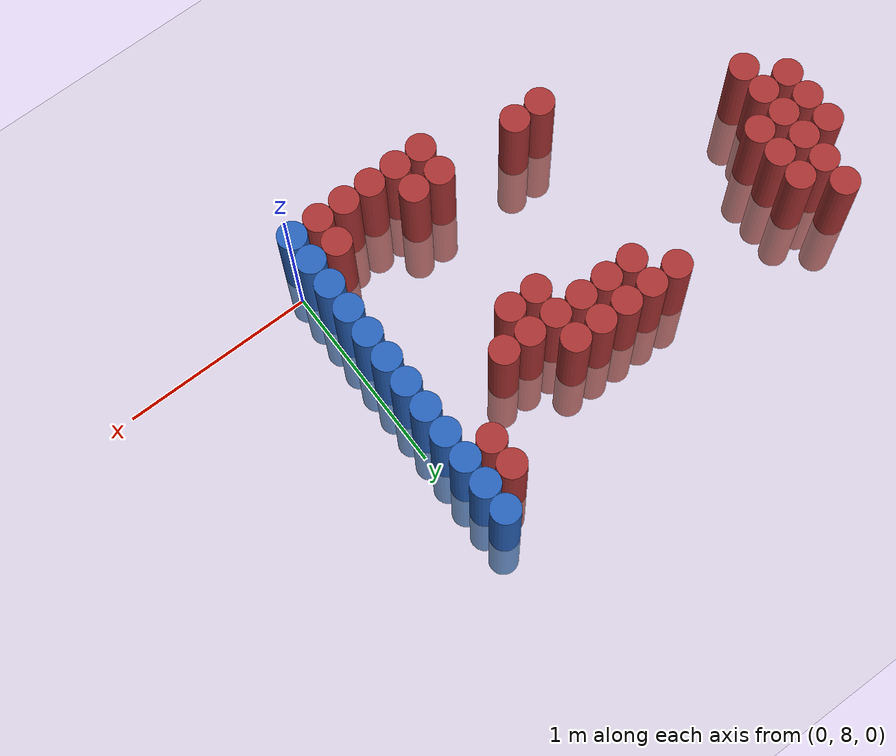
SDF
<sdf version="1.6">
 <world name="default">
  <model name="ground_plane">
   <static>1</static>
   <link name="link">
    <collision name="collision">
     <geometry><plane><normal>0 0 1</normal><size>100 100</size></plane></geometry>
     <surface><friction><ode><mu>100</mu><mu2>50</mu2></ode></friction></surface>
    </collision>
    <visual name="visual">
     <cast_shadows>0</cast_shadows>
     <geometry><plane><normal>0 0 1</normal><size>100 100</size></plane></geometry>
     <material>
      <script><uri>file://media/materials/scripts/gazebo.material</uri><name>Gazebo/Grey</name></script>
     </material>
    </visual>
   </link>
  </model>
  <model name="unit_cylinder_155">
   <static>1</static>
   <pose>-2.475000 8.625000 0.000000 0.000000 0.000000 0.000000</pose>
   <link name="link">
    <inertial>
     <mass>1</mass>
     <inertia><ixx>0.145833</ixx><ixy>0</ixy><ixz>0</ixz><iyy>0.145833</iyy><iyz>0</iyz><izz>0.125</izz></inertia>
    </inertial>
    <collision name="collision">
     <geometry><cylinder><radius>0.075000</radius><length>1</length></cylinder></geometry>
    </collision>
    <visual name="visual">
     <geometry><cylinder><radius>0.075000</radius><length>1</length></cylinder></geometry>
     <material>
      <ambient>0.648000 0.192000 0.192000 1</ambient>
      <diffuse>0.648000 0.192000 0.192000 1</diffuse>
     </material>
     <material>
      <script><name>Gazebo/Grey</name><uri>file://media/materials/scripts/gazebo.material</uri></script>
     </material>
    </visual>
   </link>
  </model>
  <model name="unit_cylinder_156">
   <static>1</static>
   <pose>-2.475000 8.775000 0.000000 0.000000 0.000000 0.000000</pose>
   <link name="link">
    <inertial>
     <mass>1</mass>
     <inertia><ixx>0.145833</ixx><ixy>0</ixy><ixz>0</ixz><iyy>0.145833</iyy><iyz>0</iyz><izz>0.125</izz></inertia>
    </inertial>
    <collision name="collision">
     <geometry><cylinder><radius>0.075000</radius><length>1</length></cylinder></geometry>
    </collision>
    <visual name="visual">
     <geometry><cylinder><radius>0.075000</radius><length>1</length></cylinder></geometry>
     <material>
      <ambient>0.648000 0.192000 0.192000 1</ambient>
      <diffuse>0.648000 0.192000 0.192000 1</diffuse>
     </material>
     <material>
      <script><name>Gazebo/Grey</name><uri>file://media/materials/scripts/gazebo.material</uri></script>
     </material>
    </visual>
   </link>
  </model>
  <model name="unit_cylinder_157">
   <static>1</static>
   <pose>-2.475000 8.925000 0.000000 0.000000 0.000000 0.000000</pose>
   <link name="link">
    <inertial>
     <mass>1</mass>
     <inertia><ixx>0.145833</ixx><ixy>0</ixy><ixz>0</ixz><iyy>0.145833</iyy><iyz>0</iyz><izz>0.125</izz></inertia>
    </inertial>
    <collision name="collision">
     <geometry><cylinder><radius>0.075000</radius><length>1</length></cylinder></geometry>
    </collision>
    <visual name="visual">
     <geometry><cylinder><radius>0.075000</radius><length>1</length></cylinder></geometry>
     <material>
      <ambient>0.648000 0.192000 0.192000 1</ambient>
      <diffuse>0.648000 0.192000 0.192000 1</diffuse>
     </material>
     <material>
      <script><name>Gazebo/Grey</name><uri>file://media/materials/scripts/gazebo.material</uri></script>
     </material>
    </visual>
   </link>
  </model>
  <model name="unit_cylinder_160">
   <static>1</static>
   <pose>-2.325000 8.475000 0.000000 0.000000 0.000000 0.000000</pose>
   <link name="link">
    <inertial>
     <mass>1</mass>
     <inertia><ixx>0.145833</ixx><ixy>0</ixy><ixz>0</ixz><iyy>0.145833</iyy><iyz>0</iyz><izz>0.125</izz></inertia>
    </inertial>
    <collision name="collision">
     <geometry><cylinder><radius>0.075000</radius><length>1</length></cylinder></geometry>
    </collision>
    <visual name="visual">
     <geometry><cylinder><radius>0.075000</radius><length>1</length></cylinder></geometry>
     <material>
      <ambient>0.648000 0.192000 0.192000 1</ambient>
      <diffuse>0.648000 0.192000 0.192000 1</diffuse>
     </material>
     <material>
      <script><name>Gazebo/Grey</name><uri>file://media/materials/scripts/gazebo.material</uri></script>
     </material>
    </visual>
   </link>
  </model>
  <model name="unit_cylinder_161">
   <static>1</static>
   <pose>-2.325000 8.625000 0.000000 0.000000 0.000000 0.000000</pose>
   <link name="link">
    <inertial>
     <mass>1</mass>
     <inertia><ixx>0.145833</ixx><ixy>0</ixy><ixz>0</ixz><iyy>0.145833</iyy><iyz>0</iyz><izz>0.125</izz></inertia>
    </inertial>
    <collision name="collision">
     <geometry><cylinder><radius>0.075000</radius><length>1</length></cylinder></geometry>
    </collision>
    <visual name="visual">
     <geometry><cylinder><radius>0.075000</radius><length>1</length></cylinder></geometry>
     <material>
      <ambient>0.648000 0.192000 0.192000 1</ambient>
      <diffuse>0.648000 0.192000 0.192000 1</diffuse>
     </material>
     <material>
      <script><name>Gazebo/Grey</name><uri>file://media/materials/scripts/gazebo.material</uri></script>
     </material>
    </visual>
   </link>
  </model>
  <model name="unit_cylinder_162">
   <static>1</static>
   <pose>-2.325000 8.775000 0.000000 0.000000 0.000000 0.000000</pose>
   <link name="link">
    <inertial>
     <mass>1</mass>
     <inertia><ixx>0.145833</ixx><ixy>0</ixy><ixz>0</ixz><iyy>0.145833</iyy><iyz>0</iyz><izz>0.125</izz></inertia>
    </inertial>
    <collision name="collision">
     <geometry><cylinder><radius>0.075000</radius><length>1</length></cylinder></geometry>
    </collision>
    <visual name="visual">
     <geometry><cylinder><radius>0.075000</radius><length>1</length></cylinder></geometry>
     <material>
      <ambient>0.648000 0.192000 0.192000 1</ambient>
      <diffuse>0.648000 0.192000 0.192000 1</diffuse>
     </material>
     <material>
      <script><name>Gazebo/Grey</name><uri>file://media/materials/scripts/gazebo.material</uri></script>
     </material>
    </visual>
   </link>
  </model>
  <model name="unit_cylinder_163">
   <static>1</static>
   <pose>-2.325000 8.925000 0.000000 0.000000 0.000000 0.000000</pose>
   <link name="link">
    <inertial>
     <mass>1</mass>
     <inertia><ixx>0.145833</ixx><ixy>0</ixy><ixz>0</ixz><iyy>0.145833</iyy><iyz>0</iyz><izz>0.125</izz></inertia>
    </inertial>
    <collision name="collision">
     <geometry><cylinder><radius>0.075000</radius><length>1</length></cylinder></geometry>
    </collision>
    <visual name="visual">
     <geometry><cylinder><radius>0.075000</radius><length>1</length></cylinder></geometry>
     <material>
      <ambient>0.648000 0.192000 0.192000 1</ambient>
      <diffuse>0.648000 0.192000 0.192000 1</diffuse>
     </material>
     <material>
      <script><name>Gazebo/Grey</name><uri>file://media/materials/scripts/gazebo.material</uri></script>
     </material>
    </visual>
   </link>
  </model>
  <model name="unit_cylinder_164">
   <static>1</static>
   <pose>-2.325000 9.075000 0.000000 0.000000 0.000000 0.000000</pose>
   <link name="link">
    <inertial>
     <mass>1</mass>
     <inertia><ixx>0.145833</ixx><ixy>0</ixy><ixz>0</ixz><iyy>0.145833</iyy><iyz>0</iyz><izz>0.125</izz></inertia>
    </inertial>
    <collision name="collision">
     <geometry><cylinder><radius>0.075000</radius><length>1</length></cylinder></geometry>
    </collision>
    <visual name="visual">
     <geometry><cylinder><radius>0.075000</radius><length>1</length></cylinder></geometry>
     <material>
      <ambient>0.648000 0.192000 0.192000 1</ambient>
      <diffuse>0.648000 0.192000 0.192000 1</diffuse>
     </material>
     <material>
      <script><name>Gazebo/Grey</name><uri>file://media/materials/scripts/gazebo.material</uri></script>
     </material>
    </visual>
   </link>
  </model>
  <model name="unit_cylinder_165">
   <static>1</static>
   <pose>-2.325000 9.225000 0.000000 0.000000 0.000000 0.000000</pose>
   <link name="link">
    <inertial>
     <mass>1</mass>
     <inertia><ixx>0.145833</ixx><ixy>0</ixy><ixz>0</ixz><iyy>0.145833</iyy><iyz>0</iyz><izz>0.125</izz></inertia>
    </inertial>
    <collision name="collision">
     <geometry><cylinder><radius>0.075000</radius><length>1</length></cylinder></geometry>
    </collision>
    <visual name="visual">
     <geometry><cylinder><radius>0.075000</radius><length>1</length></cylinder></geometry>
     <material>
      <ambient>0.648000 0.192000 0.192000 1</ambient>
      <diffuse>0.648000 0.192000 0.192000 1</diffuse>
     </material>
     <material>
      <script><name>Gazebo/Grey</name><uri>file://media/materials/scripts/gazebo.material</uri></script>
     </material>
    </visual>
   </link>
  </model>
  <model name="unit_cylinder_168">
   <static>1</static>
   <pose>-2.175000 8.775000 0.000000 0.000000 0.000000 0.000000</pose>
   <link name="link">
    <inertial>
     <mass>1</mass>
     <inertia><ixx>0.145833</ixx><ixy>0</ixy><ixz>0</ixz><iyy>0.145833</iyy><iyz>0</iyz><izz>0.125</izz></inertia>
    </inertial>
    <collision name="collision">
     <geometry><cylinder><radius>0.075000</radius><length>1</length></cylinder></geometry>
    </collision>
    <visual name="visual">
     <geometry><cylinder><radius>0.075000</radius><length>1</length></cylinder></geometry>
     <material>
      <ambient>0.648000 0.192000 0.192000 1</ambient>
      <diffuse>0.648000 0.192000 0.192000 1</diffuse>
     </material>
     <material>
      <script><name>Gazebo/Grey</name><uri>file://media/materials/scripts/gazebo.material</uri></script>
     </material>
    </visual>
   </link>
  </model>
  <model name="unit_cylinder_169">
   <static>1</static>
   <pose>-2.175000 8.925000 0.000000 0.000000 0.000000 0.000000</pose>
   <link name="link">
    <inertial>
     <mass>1</mass>
     <inertia><ixx>0.145833</ixx><ixy>0</ixy><ixz>0</ixz><iyy>0.145833</iyy><iyz>0</iyz><izz>0.125</izz></inertia>
    </inertial>
    <collision name="collision">
     <geometry><cylinder><radius>0.075000</radius><length>1</length></cylinder></geometry>
    </collision>
    <visual name="visual">
     <geometry><cylinder><radius>0.075000</radius><length>1</length></cylinder></geometry>
     <material>
      <ambient>0.648000 0.192000 0.192000 1</ambient>
      <diffuse>0.648000 0.192000 0.192000 1</diffuse>
     </material>
     <material>
      <script><name>Gazebo/Grey</name><uri>file://media/materials/scripts/gazebo.material</uri></script>
     </material>
    </visual>
   </link>
  </model>
  <model name="unit_cylinder_170">
   <static>1</static>
   <pose>-2.175000 9.075000 0.000000 0.000000 0.000000 0.000000</pose>
   <link name="link">
    <inertial>
     <mass>1</mass>
     <inertia><ixx>0.145833</ixx><ixy>0</ixy><ixz>0</ixz><iyy>0.145833</iyy><iyz>0</iyz><izz>0.125</izz></inertia>
    </inertial>
    <collision name="collision">
     <geometry><cylinder><radius>0.075000</radius><length>1</length></cylinder></geometry>
    </collision>
    <visual name="visual">
     <geometry><cylinder><radius>0.075000</radius><length>1</length></cylinder></geometry>
     <material>
      <ambient>0.648000 0.192000 0.192000 1</ambient>
      <diffuse>0.648000 0.192000 0.192000 1</diffuse>
     </material>
     <material>
      <script><name>Gazebo/Grey</name><uri>file://media/materials/scripts/gazebo.material</uri></script>
     </material>
    </visual>
   </link>
  </model>
  <model name="unit_cylinder_195">
   <static>1</static>
   <pose>-1.425000 8.025000 0.000000 0.000000 0.000000 0.000000</pose>
   <link name="link">
    <inertial>
     <mass>1</mass>
     <inertia><ixx>0.145833</ixx><ixy>0</ixy><ixz>0</ixz><iyy>0.145833</iyy><iyz>0</iyz><izz>0.125</izz></inertia>
    </inertial>
    <collision name="collision">
     <geometry><cylinder><radius>0.075000</radius><length>1</length></cylinder></geometry>
    </collision>
    <visual name="visual">
     <geometry><cylinder><radius>0.075000</radius><length>1</length></cylinder></geometry>
     <material>
      <ambient>0.648000 0.192000 0.192000 1</ambient>
      <diffuse>0.648000 0.192000 0.192000 1</diffuse>
     </material>
     <material>
      <script><name>Gazebo/Grey</name><uri>file://media/materials/scripts/gazebo.material</uri></script>
     </material>
    </visual>
   </link>
  </model>
  <model name="unit_cylinder_196">
   <static>1</static>
   <pose>-1.425000 9.075000 0.000000 0.000000 0.000000 0.000000</pose>
   <link name="link">
    <inertial>
     <mass>1</mass>
     <inertia><ixx>0.145833</ixx><ixy>0</ixy><ixz>0</ixz><iyy>0.145833</iyy><iyz>0</iyz><izz>0.125</izz></inertia>
    </inertial>
    <collision name="collision">
     <geometry><cylinder><radius>0.075000</radius><length>1</length></cylinder></geometry>
    </collision>
    <visual name="visual">
     <geometry><cylinder><radius>0.075000</radius><length>1</length></cylinder></geometry>
     <material>
      <ambient>0.648000 0.192000 0.192000 1</ambient>
      <diffuse>0.648000 0.192000 0.192000 1</diffuse>
     </material>
     <material>
      <script><name>Gazebo/Grey</name><uri>file://media/materials/scripts/gazebo.material</uri></script>
     </material>
    </visual>
   </link>
  </model>
  <model name="unit_cylinder_200">
   <static>1</static>
   <pose>-1.275000 8.025000 0.000000 0.000000 0.000000 0.000000</pose>
   <link name="link">
    <inertial>
     <mass>1</mass>
     <inertia><ixx>0.145833</ixx><ixy>0</ixy><ixz>0</ixz><iyy>0.145833</iyy><iyz>0</iyz><izz>0.125</izz></inertia>
    </inertial>
    <collision name="collision">
     <geometry><cylinder><radius>0.075000</radius><length>1</length></cylinder></geometry>
    </collision>
    <visual name="visual">
     <geometry><cylinder><radius>0.075000</radius><length>1</length></cylinder></geometry>
     <material>
      <ambient>0.648000 0.192000 0.192000 1</ambient>
      <diffuse>0.648000 0.192000 0.192000 1</diffuse>
     </material>
     <material>
      <script><name>Gazebo/Grey</name><uri>file://media/materials/scripts/gazebo.material</uri></script>
     </material>
    </visual>
   </link>
  </model>
  <model name="unit_cylinder_201">
   <static>1</static>
   <pose>-1.275000 8.925000 0.000000 0.000000 0.000000 0.000000</pose>
   <link name="link">
    <inertial>
     <mass>1</mass>
     <inertia><ixx>0.145833</ixx><ixy>0</ixy><ixz>0</ixz><iyy>0.145833</iyy><iyz>0</iyz><izz>0.125</izz></inertia>
    </inertial>
    <collision name="collision">
     <geometry><cylinder><radius>0.075000</radius><length>1</length></cylinder></geometry>
    </collision>
    <visual name="visual">
     <geometry><cylinder><radius>0.075000</radius><length>1</length></cylinder></geometry>
     <material>
      <ambient>0.648000 0.192000 0.192000 1</ambient>
      <diffuse>0.648000 0.192000 0.192000 1</diffuse>
     </material>
     <material>
      <script><name>Gazebo/Grey</name><uri>file://media/materials/scripts/gazebo.material</uri></script>
     </material>
    </visual>
   </link>
  </model>
  <model name="unit_cylinder_202">
   <static>1</static>
   <pose>-1.275000 9.075000 0.000000 0.000000 0.000000 0.000000</pose>
   <link name="link">
    <inertial>
     <mass>1</mass>
     <inertia><ixx>0.145833</ixx><ixy>0</ixy><ixz>0</ixz><iyy>0.145833</iyy><iyz>0</iyz><izz>0.125</izz></inertia>
    </inertial>
    <collision name="collision">
     <geometry><cylinder><radius>0.075000</radius><length>1</length></cylinder></geometry>
    </collision>
    <visual name="visual">
     <geometry><cylinder><radius>0.075000</radius><length>1</length></cylinder></geometry>
     <material>
      <ambient>0.648000 0.192000 0.192000 1</ambient>
      <diffuse>0.648000 0.192000 0.192000 1</diffuse>
     </material>
     <material>
      <script><name>Gazebo/Grey</name><uri>file://media/materials/scripts/gazebo.material</uri></script>
     </material>
    </visual>
   </link>
  </model>
  <model name="unit_cylinder_209">
   <static>1</static>
   <pose>-1.125000 8.925000 0.000000 0.000000 0.000000 0.000000</pose>
   <link name="link">
    <inertial>
     <mass>1</mass>
     <inertia><ixx>0.145833</ixx><ixy>0</ixy><ixz>0</ixz><iyy>0.145833</iyy><iyz>0</iyz><izz>0.125</izz></inertia>
    </inertial>
    <collision name="collision">
     <geometry><cylinder><radius>0.075000</radius><length>1</length></cylinder></geometry>
    </collision>
    <visual name="visual">
     <geometry><cylinder><radius>0.075000</radius><length>1</length></cylinder></geometry>
     <material>
      <ambient>0.648000 0.192000 0.192000 1</ambient>
      <diffuse>0.648000 0.192000 0.192000 1</diffuse>
     </material>
     <material>
      <script><name>Gazebo/Grey</name><uri>file://media/materials/scripts/gazebo.material</uri></script>
     </material>
    </visual>
   </link>
  </model>
  <model name="unit_cylinder_210">
   <static>1</static>
   <pose>-1.125000 9.075000 0.000000 0.000000 0.000000 0.000000</pose>
   <link name="link">
    <inertial>
     <mass>1</mass>
     <inertia><ixx>0.145833</ixx><ixy>0</ixy><ixz>0</ixz><iyy>0.145833</iyy><iyz>0</iyz><izz>0.125</izz></inertia>
    </inertial>
    <collision name="collision">
     <geometry><cylinder><radius>0.075000</radius><length>1</length></cylinder></geometry>
    </collision>
    <visual name="visual">
     <geometry><cylinder><radius>0.075000</radius><length>1</length></cylinder></geometry>
     <material>
      <ambient>0.648000 0.192000 0.192000 1</ambient>
      <diffuse>0.648000 0.192000 0.192000 1</diffuse>
     </material>
     <material>
      <script><name>Gazebo/Grey</name><uri>file://media/materials/scripts/gazebo.material</uri></script>
     </material>
    </visual>
   </link>
  </model>
  <model name="unit_cylinder_215">
   <static>1</static>
   <pose>-0.975000 8.925000 0.000000 0.000000 0.000000 0.000000</pose>
   <link name="link">
    <inertial>
     <mass>1</mass>
     <inertia><ixx>0.145833</ixx><ixy>0</ixy><ixz>0</ixz><iyy>0.145833</iyy><iyz>0</iyz><izz>0.125</izz></inertia>
    </inertial>
    <collision name="collision">
     <geometry><cylinder><radius>0.075000</radius><length>1</length></cylinder></geometry>
    </collision>
    <visual name="visual">
     <geometry><cylinder><radius>0.075000</radius><length>1</length></cylinder></geometry>
     <material>
      <ambient>0.648000 0.192000 0.192000 1</ambient>
      <diffuse>0.648000 0.192000 0.192000 1</diffuse>
     </material>
     <material>
      <script><name>Gazebo/Grey</name><uri>file://media/materials/scripts/gazebo.material</uri></script>
     </material>
    </visual>
   </link>
  </model>
  <model name="unit_cylinder_216">
   <static>1</static>
   <pose>-0.975000 9.075000 0.000000 0.000000 0.000000 0.000000</pose>
   <link name="link">
    <inertial>
     <mass>1</mass>
     <inertia><ixx>0.145833</ixx><ixy>0</ixy><ixz>0</ixz><iyy>0.145833</iyy><iyz>0</iyz><izz>0.125</izz></inertia>
    </inertial>
    <collision name="collision">
     <geometry><cylinder><radius>0.075000</radius><length>1</length></cylinder></geometry>
    </collision>
    <visual name="visual">
     <geometry><cylinder><radius>0.075000</radius><length>1</length></cylinder></geometry>
     <material>
      <ambient>0.648000 0.192000 0.192000 1</ambient>
      <diffuse>0.648000 0.192000 0.192000 1</diffuse>
     </material>
     <material>
      <script><name>Gazebo/Grey</name><uri>file://media/materials/scripts/gazebo.material</uri></script>
     </material>
    </visual>
   </link>
  </model>
  <model name="unit_cylinder_218">
   <static>1</static>
   <pose>-0.825000 7.875000 0.000000 0.000000 0.000000 0.000000</pose>
   <link name="link">
    <inertial>
     <mass>1</mass>
     <inertia><ixx>0.145833</ixx><ixy>0</ixy><ixz>0</ixz><iyy>0.145833</iyy><iyz>0</iyz><izz>0.125</izz></inertia>
    </inertial>
    <collision name="collision">
     <geometry><cylinder><radius>0.075000</radius><length>1</length></cylinder></geometry>
    </collision>
    <visual name="visual">
     <geometry><cylinder><radius>0.075000</radius><length>1</length></cylinder></geometry>
     <material>
      <ambient>0.648000 0.192000 0.192000 1</ambient>
      <diffuse>0.648000 0.192000 0.192000 1</diffuse>
     </material>
     <material>
      <script><name>Gazebo/Grey</name><uri>file://media/materials/scripts/gazebo.material</uri></script>
     </material>
    </visual>
   </link>
  </model>
  <model name="unit_cylinder_219">
   <static>1</static>
   <pose>-0.825000 8.025000 0.000000 0.000000 0.000000 0.000000</pose>
   <link name="link">
    <inertial>
     <mass>1</mass>
     <inertia><ixx>0.145833</ixx><ixy>0</ixy><ixz>0</ixz><iyy>0.145833</iyy><iyz>0</iyz><izz>0.125</izz></inertia>
    </inertial>
    <collision name="collision">
     <geometry><cylinder><radius>0.075000</radius><length>1</length></cylinder></geometry>
    </collision>
    <visual name="visual">
     <geometry><cylinder><radius>0.075000</radius><length>1</length></cylinder></geometry>
     <material>
      <ambient>0.648000 0.192000 0.192000 1</ambient>
      <diffuse>0.648000 0.192000 0.192000 1</diffuse>
     </material>
     <material>
      <script><name>Gazebo/Grey</name><uri>file://media/materials/scripts/gazebo.material</uri></script>
     </material>
    </visual>
   </link>
  </model>
  <model name="unit_cylinder_220">
   <static>1</static>
   <pose>-0.825000 8.775000 0.000000 0.000000 0.000000 0.000000</pose>
   <link name="link">
    <inertial>
     <mass>1</mass>
     <inertia><ixx>0.145833</ixx><ixy>0</ixy><ixz>0</ixz><iyy>0.145833</iyy><iyz>0</iyz><izz>0.125</izz></inertia>
    </inertial>
    <collision name="collision">
     <geometry><cylinder><radius>0.075000</radius><length>1</length></cylinder></geometry>
    </collision>
    <visual name="visual">
     <geometry><cylinder><radius>0.075000</radius><length>1</length></cylinder></geometry>
     <material>
      <ambient>0.648000 0.192000 0.192000 1</ambient>
      <diffuse>0.648000 0.192000 0.192000 1</diffuse>
     </material>
     <material>
      <script><name>Gazebo/Grey</name><uri>file://media/materials/scripts/gazebo.material</uri></script>
     </material>
    </visual>
   </link>
  </model>
  <model name="unit_cylinder_221">
   <static>1</static>
   <pose>-0.825000 8.925000 0.000000 0.000000 0.000000 0.000000</pose>
   <link name="link">
    <inertial>
     <mass>1</mass>
     <inertia><ixx>0.145833</ixx><ixy>0</ixy><ixz>0</ixz><iyy>0.145833</iyy><iyz>0</iyz><izz>0.125</izz></inertia>
    </inertial>
    <collision name="collision">
     <geometry><cylinder><radius>0.075000</radius><length>1</length></cylinder></geometry>
    </collision>
    <visual name="visual">
     <geometry><cylinder><radius>0.075000</radius><length>1</length></cylinder></geometry>
     <material>
      <ambient>0.648000 0.192000 0.192000 1</ambient>
      <diffuse>0.648000 0.192000 0.192000 1</diffuse>
     </material>
     <material>
      <script><name>Gazebo/Grey</name><uri>file://media/materials/scripts/gazebo.material</uri></script>
     </material>
    </visual>
   </link>
  </model>
  <model name="unit_cylinder_222">
   <static>1</static>
   <pose>-0.825000 9.075000 0.000000 0.000000 0.000000 0.000000</pose>
   <link name="link">
    <inertial>
     <mass>1</mass>
     <inertia><ixx>0.145833</ixx><ixy>0</ixy><ixz>0</ixz><iyy>0.145833</iyy><iyz>0</iyz><izz>0.125</izz></inertia>
    </inertial>
    <collision name="collision">
     <geometry><cylinder><radius>0.075000</radius><length>1</length></cylinder></geometry>
    </collision>
    <visual name="visual">
     <geometry><cylinder><radius>0.075000</radius><length>1</length></cylinder></geometry>
     <material>
      <ambient>0.648000 0.192000 0.192000 1</ambient>
      <diffuse>0.648000 0.192000 0.192000 1</diffuse>
     </material>
     <material>
      <script><name>Gazebo/Grey</name><uri>file://media/materials/scripts/gazebo.material</uri></script>
     </material>
    </visual>
   </link>
  </model>
  <model name="unit_cylinder_226">
   <static>1</static>
   <pose>-0.675000 7.875000 0.000000 0.000000 0.000000 0.000000</pose>
   <link name="link">
    <inertial>
     <mass>1</mass>
     <inertia><ixx>0.145833</ixx><ixy>0</ixy><ixz>0</ixz><iyy>0.145833</iyy><iyz>0</iyz><izz>0.125</izz></inertia>
    </inertial>
    <collision name="collision">
     <geometry><cylinder><radius>0.075000</radius><length>1</length></cylinder></geometry>
    </collision>
    <visual name="visual">
     <geometry><cylinder><radius>0.075000</radius><length>1</length></cylinder></geometry>
     <material>
      <ambient>0.648000 0.192000 0.192000 1</ambient>
      <diffuse>0.648000 0.192000 0.192000 1</diffuse>
     </material>
     <material>
      <script><name>Gazebo/Grey</name><uri>file://media/materials/scripts/gazebo.material</uri></script>
     </material>
    </visual>
   </link>
  </model>
  <model name="unit_cylinder_227">
   <static>1</static>
   <pose>-0.675000 8.025000 0.000000 0.000000 0.000000 0.000000</pose>
   <link name="link">
    <inertial>
     <mass>1</mass>
     <inertia><ixx>0.145833</ixx><ixy>0</ixy><ixz>0</ixz><iyy>0.145833</iyy><iyz>0</iyz><izz>0.125</izz></inertia>
    </inertial>
    <collision name="collision">
     <geometry><cylinder><radius>0.075000</radius><length>1</length></cylinder></geometry>
    </collision>
    <visual name="visual">
     <geometry><cylinder><radius>0.075000</radius><length>1</length></cylinder></geometry>
     <material>
      <ambient>0.648000 0.192000 0.192000 1</ambient>
      <diffuse>0.648000 0.192000 0.192000 1</diffuse>
     </material>
     <material>
      <script><name>Gazebo/Grey</name><uri>file://media/materials/scripts/gazebo.material</uri></script>
     </material>
    </visual>
   </link>
  </model>
  <model name="unit_cylinder_228">
   <static>1</static>
   <pose>-0.675000 8.775000 0.000000 0.000000 0.000000 0.000000</pose>
   <link name="link">
    <inertial>
     <mass>1</mass>
     <inertia><ixx>0.145833</ixx><ixy>0</ixy><ixz>0</ixz><iyy>0.145833</iyy><iyz>0</iyz><izz>0.125</izz></inertia>
    </inertial>
    <collision name="collision">
     <geometry><cylinder><radius>0.075000</radius><length>1</length></cylinder></geometry>
    </collision>
    <visual name="visual">
     <geometry><cylinder><radius>0.075000</radius><length>1</length></cylinder></geometry>
     <material>
      <ambient>0.648000 0.192000 0.192000 1</ambient>
      <diffuse>0.648000 0.192000 0.192000 1</diffuse>
     </material>
     <material>
      <script><name>Gazebo/Grey</name><uri>file://media/materials/scripts/gazebo.material</uri></script>
     </material>
    </visual>
   </link>
  </model>
  <model name="unit_cylinder_229">
   <static>1</static>
   <pose>-0.675000 8.925000 0.000000 0.000000 0.000000 0.000000</pose>
   <link name="link">
    <inertial>
     <mass>1</mass>
     <inertia><ixx>0.145833</ixx><ixy>0</ixy><ixz>0</ixz><iyy>0.145833</iyy><iyz>0</iyz><izz>0.125</izz></inertia>
    </inertial>
    <collision name="collision">
     <geometry><cylinder><radius>0.075000</radius><length>1</length></cylinder></geometry>
    </collision>
    <visual name="visual">
     <geometry><cylinder><radius>0.075000</radius><length>1</length></cylinder></geometry>
     <material>
      <ambient>0.648000 0.192000 0.192000 1</ambient>
      <diffuse>0.648000 0.192000 0.192000 1</diffuse>
     </material>
     <material>
      <script><name>Gazebo/Grey</name><uri>file://media/materials/scripts/gazebo.material</uri></script>
     </material>
    </visual>
   </link>
  </model>
  <model name="unit_cylinder_235">
   <static>1</static>
   <pose>-0.525000 7.875000 0.000000 0.000000 0.000000 0.000000</pose>
   <link name="link">
    <inertial>
     <mass>1</mass>
     <inertia><ixx>0.145833</ixx><ixy>0</ixy><ixz>0</ixz><iyy>0.145833</iyy><iyz>0</iyz><izz>0.125</izz></inertia>
    </inertial>
    <collision name="collision">
     <geometry><cylinder><radius>0.075000</radius><length>1</length></cylinder></geometry>
    </collision>
    <visual name="visual">
     <geometry><cylinder><radius>0.075000</radius><length>1</length></cylinder></geometry>
     <material>
      <ambient>0.648000 0.192000 0.192000 1</ambient>
      <diffuse>0.648000 0.192000 0.192000 1</diffuse>
     </material>
     <material>
      <script><name>Gazebo/Grey</name><uri>file://media/materials/scripts/gazebo.material</uri></script>
     </material>
    </visual>
   </link>
  </model>
  <model name="unit_cylinder_236">
   <static>1</static>
   <pose>-0.525000 8.925000 0.000000 0.000000 0.000000 0.000000</pose>
   <link name="link">
    <inertial>
     <mass>1</mass>
     <inertia><ixx>0.145833</ixx><ixy>0</ixy><ixz>0</ixz><iyy>0.145833</iyy><iyz>0</iyz><izz>0.125</izz></inertia>
    </inertial>
    <collision name="collision">
     <geometry><cylinder><radius>0.075000</radius><length>1</length></cylinder></geometry>
    </collision>
    <visual name="visual">
     <geometry><cylinder><radius>0.075000</radius><length>1</length></cylinder></geometry>
     <material>
      <ambient>0.648000 0.192000 0.192000 1</ambient>
      <diffuse>0.648000 0.192000 0.192000 1</diffuse>
     </material>
     <material>
      <script><name>Gazebo/Grey</name><uri>file://media/materials/scripts/gazebo.material</uri></script>
     </material>
    </visual>
   </link>
  </model>
  <model name="unit_cylinder_247">
   <static>1</static>
   <pose>-0.375000 7.875000 0.000000 0.000000 0.000000 0.000000</pose>
   <link name="link">
    <inertial>
     <mass>1</mass>
     <inertia><ixx>0.145833</ixx><ixy>0</ixy><ixz>0</ixz><iyy>0.145833</iyy><iyz>0</iyz><izz>0.125</izz></inertia>
    </inertial>
    <collision name="collision">
     <geometry><cylinder><radius>0.075000</radius><length>1</length></cylinder></geometry>
    </collision>
    <visual name="visual">
     <geometry><cylinder><radius>0.075000</radius><length>1</length></cylinder></geometry>
     <material>
      <ambient>0.648000 0.192000 0.192000 1</ambient>
      <diffuse>0.648000 0.192000 0.192000 1</diffuse>
     </material>
     <material>
      <script><name>Gazebo/Grey</name><uri>file://media/materials/scripts/gazebo.material</uri></script>
     </material>
    </visual>
   </link>
  </model>
  <model name="unit_cylinder_257">
   <static>1</static>
   <pose>-0.225000 7.875000 0.000000 0.000000 0.000000 0.000000</pose>
   <link name="link">
    <inertial>
     <mass>1</mass>
     <inertia><ixx>0.145833</ixx><ixy>0</ixy><ixz>0</ixz><iyy>0.145833</iyy><iyz>0</iyz><izz>0.125</izz></inertia>
    </inertial>
    <collision name="collision">
     <geometry><cylinder><radius>0.075000</radius><length>1</length></cylinder></geometry>
    </collision>
    <visual name="visual">
     <geometry><cylinder><radius>0.075000</radius><length>1</length></cylinder></geometry>
     <material>
      <ambient>0.648000 0.192000 0.192000 1</ambient>
      <diffuse>0.648000 0.192000 0.192000 1</diffuse>
     </material>
     <material>
      <script><name>Gazebo/Grey</name><uri>file://media/materials/scripts/gazebo.material</uri></script>
     </material>
    </visual>
   </link>
  </model>
  <model name="unit_cylinder_258">
   <static>1</static>
   <pose>-0.225000 8.025000 0.000000 0.000000 0.000000 0.000000</pose>
   <link name="link">
    <inertial>
     <mass>1</mass>
     <inertia><ixx>0.145833</ixx><ixy>0</ixy><ixz>0</ixz><iyy>0.145833</iyy><iyz>0</iyz><izz>0.125</izz></inertia>
    </inertial>
    <collision name="collision">
     <geometry><cylinder><radius>0.075000</radius><length>1</length></cylinder></geometry>
    </collision>
    <visual name="visual">
     <geometry><cylinder><radius>0.075000</radius><length>1</length></cylinder></geometry>
     <material>
      <ambient>0.648000 0.192000 0.192000 1</ambient>
      <diffuse>0.648000 0.192000 0.192000 1</diffuse>
     </material>
     <material>
      <script><name>Gazebo/Grey</name><uri>file://media/materials/scripts/gazebo.material</uri></script>
     </material>
    </visual>
   </link>
  </model>
  <model name="unit_cylinder_259">
   <static>1</static>
   <pose>-0.225000 9.225000 0.000000 0.000000 0.000000 0.000000</pose>
   <link name="link">
    <inertial>
     <mass>1</mass>
     <inertia><ixx>0.145833</ixx><ixy>0</ixy><ixz>0</ixz><iyy>0.145833</iyy><iyz>0</iyz><izz>0.125</izz></inertia>
    </inertial>
    <collision name="collision">
     <geometry><cylinder><radius>0.075000</radius><length>1</length></cylinder></geometry>
    </collision>
    <visual name="visual">
     <geometry><cylinder><radius>0.075000</radius><length>1</length></cylinder></geometry>
     <material>
      <ambient>0.648000 0.192000 0.192000 1</ambient>
      <diffuse>0.648000 0.192000 0.192000 1</diffuse>
     </material>
     <material>
      <script><name>Gazebo/Grey</name><uri>file://media/materials/scripts/gazebo.material</uri></script>
     </material>
    </visual>
   </link>
  </model>
  <model name="unit_cylinder_260">
   <static>1</static>
   <pose>-0.225000 9.375000 0.000000 0.000000 0.000000 0.000000</pose>
   <link name="link">
    <inertial>
     <mass>1</mass>
     <inertia><ixx>0.145833</ixx><ixy>0</ixy><ixz>0</ixz><iyy>0.145833</iyy><iyz>0</iyz><izz>0.125</izz></inertia>
    </inertial>
    <collision name="collision">
     <geometry><cylinder><radius>0.075000</radius><length>1</length></cylinder></geometry>
    </collision>
    <visual name="visual">
     <geometry><cylinder><radius>0.075000</radius><length>1</length></cylinder></geometry>
     <material>
      <ambient>0.648000 0.192000 0.192000 1</ambient>
      <diffuse>0.648000 0.192000 0.192000 1</diffuse>
     </material>
     <material>
      <script><name>Gazebo/Grey</name><uri>file://media/materials/scripts/gazebo.material</uri></script>
     </material>
    </visual>
   </link>
  </model>
  <model name="unit_cylinder_279">
   <static>1</static>
   <pose>-0.075000 7.875000 0.000000 0.000000 0.000000 0.000000</pose>
   <link name="link">
    <inertial>
     <mass>1</mass>
     <inertia><ixx>0.145833</ixx><ixy>0</ixy><ixz>0</ixz><iyy>0.145833</iyy><iyz>0</iyz><izz>0.125</izz></inertia>
    </inertial>
    <collision name="collision">
     <geometry><cylinder><radius>0.075000</radius><length>1</length></cylinder></geometry>
    </collision>
    <visual name="visual">
     <geometry><cylinder><radius>0.075000</radius><length>1</length></cylinder></geometry>
     <material>
      <ambient>0.152000 0.379000 0.720000 1</ambient>
      <diffuse>0.152000 0.379000 0.720000 1</diffuse>
     </material>
     <material>
      <script><name>Gazebo/Grey</name><uri>file://media/materials/scripts/gazebo.material</uri></script>
     </material>
    </visual>
   </link>
  </model>
  <model name="unit_cylinder_280">
   <static>1</static>
   <pose>-0.075000 8.025000 0.000000 0.000000 0.000000 0.000000</pose>
   <link name="link">
    <inertial>
     <mass>1</mass>
     <inertia><ixx>0.145833</ixx><ixy>0</ixy><ixz>0</ixz><iyy>0.145833</iyy><iyz>0</iyz><izz>0.125</izz></inertia>
    </inertial>
    <collision name="collision">
     <geometry><cylinder><radius>0.075000</radius><length>1</length></cylinder></geometry>
    </collision>
    <visual name="visual">
     <geometry><cylinder><radius>0.075000</radius><length>1</length></cylinder></geometry>
     <material>
      <ambient>0.152000 0.379000 0.720000 1</ambient>
      <diffuse>0.152000 0.379000 0.720000 1</diffuse>
     </material>
     <material>
      <script><name>Gazebo/Grey</name><uri>file://media/materials/scripts/gazebo.material</uri></script>
     </material>
    </visual>
   </link>
  </model>
  <model name="unit_cylinder_281">
   <static>1</static>
   <pose>-0.075000 8.175000 0.000000 0.000000 0.000000 0.000000</pose>
   <link name="link">
    <inertial>
     <mass>1</mass>
     <inertia><ixx>0.145833</ixx><ixy>0</ixy><ixz>0</ixz><iyy>0.145833</iyy><iyz>0</iyz><izz>0.125</izz></inertia>
    </inertial>
    <collision name="collision">
     <geometry><cylinder><radius>0.075000</radius><length>1</length></cylinder></geometry>
    </collision>
    <visual name="visual">
     <geometry><cylinder><radius>0.075000</radius><length>1</length></cylinder></geometry>
     <material>
      <ambient>0.152000 0.379000 0.720000 1</ambient>
      <diffuse>0.152000 0.379000 0.720000 1</diffuse>
     </material>
     <material>
      <script><name>Gazebo/Grey</name><uri>file://media/materials/scripts/gazebo.material</uri></script>
     </material>
    </visual>
   </link>
  </model>
  <model name="unit_cylinder_282">
   <static>1</static>
   <pose>-0.075000 8.325000 0.000000 0.000000 0.000000 0.000000</pose>
   <link name="link">
    <inertial>
     <mass>1</mass>
     <inertia><ixx>0.145833</ixx><ixy>0</ixy><ixz>0</ixz><iyy>0.145833</iyy><iyz>0</iyz><izz>0.125</izz></inertia>
    </inertial>
    <collision name="collision">
     <geometry><cylinder><radius>0.075000</radius><length>1</length></cylinder></geometry>
    </collision>
    <visual name="visual">
     <geometry><cylinder><radius>0.075000</radius><length>1</length></cylinder></geometry>
     <material>
      <ambient>0.152000 0.379000 0.720000 1</ambient>
      <diffuse>0.152000 0.379000 0.720000 1</diffuse>
     </material>
     <material>
      <script><name>Gazebo/Grey</name><uri>file://media/materials/scripts/gazebo.material</uri></script>
     </material>
    </visual>
   </link>
  </model>
  <model name="unit_cylinder_283">
   <static>1</static>
   <pose>-0.075000 8.475000 0.000000 0.000000 0.000000 0.000000</pose>
   <link name="link">
    <inertial>
     <mass>1</mass>
     <inertia><ixx>0.145833</ixx><ixy>0</ixy><ixz>0</ixz><iyy>0.145833</iyy><iyz>0</iyz><izz>0.125</izz></inertia>
    </inertial>
    <collision name="collision">
     <geometry><cylinder><radius>0.075000</radius><length>1</length></cylinder></geometry>
    </collision>
    <visual name="visual">
     <geometry><cylinder><radius>0.075000</radius><length>1</length></cylinder></geometry>
     <material>
      <ambient>0.152000 0.379000 0.720000 1</ambient>
      <diffuse>0.152000 0.379000 0.720000 1</diffuse>
     </material>
     <material>
      <script><name>Gazebo/Grey</name><uri>file://media/materials/scripts/gazebo.material</uri></script>
     </material>
    </visual>
   </link>
  </model>
  <model name="unit_cylinder_284">
   <static>1</static>
   <pose>-0.075000 8.625000 0.000000 0.000000 0.000000 0.000000</pose>
   <link name="link">
    <inertial>
     <mass>1</mass>
     <inertia><ixx>0.145833</ixx><ixy>0</ixy><ixz>0</ixz><iyy>0.145833</iyy><iyz>0</iyz><izz>0.125</izz></inertia>
    </inertial>
    <collision name="collision">
     <geometry><cylinder><radius>0.075000</radius><length>1</length></cylinder></geometry>
    </collision>
    <visual name="visual">
     <geometry><cylinder><radius>0.075000</radius><length>1</length></cylinder></geometry>
     <material>
      <ambient>0.152000 0.379000 0.720000 1</ambient>
      <diffuse>0.152000 0.379000 0.720000 1</diffuse>
     </material>
     <material>
      <script><name>Gazebo/Grey</name><uri>file://media/materials/scripts/gazebo.material</uri></script>
     </material>
    </visual>
   </link>
  </model>
  <model name="unit_cylinder_285">
   <static>1</static>
   <pose>-0.075000 8.775000 0.000000 0.000000 0.000000 0.000000</pose>
   <link name="link">
    <inertial>
     <mass>1</mass>
     <inertia><ixx>0.145833</ixx><ixy>0</ixy><ixz>0</ixz><iyy>0.145833</iyy><iyz>0</iyz><izz>0.125</izz></inertia>
    </inertial>
    <collision name="collision">
     <geometry><cylinder><radius>0.075000</radius><length>1</length></cylinder></geometry>
    </collision>
    <visual name="visual">
     <geometry><cylinder><radius>0.075000</radius><length>1</length></cylinder></geometry>
     <material>
      <ambient>0.152000 0.379000 0.720000 1</ambient>
      <diffuse>0.152000 0.379000 0.720000 1</diffuse>
     </material>
     <material>
      <script><name>Gazebo/Grey</name><uri>file://media/materials/scripts/gazebo.material</uri></script>
     </material>
    </visual>
   </link>
  </model>
  <model name="unit_cylinder_286">
   <static>1</static>
   <pose>-0.075000 8.925000 0.000000 0.000000 0.000000 0.000000</pose>
   <link name="link">
    <inertial>
     <mass>1</mass>
     <inertia><ixx>0.145833</ixx><ixy>0</ixy><ixz>0</ixz><iyy>0.145833</iyy><iyz>0</iyz><izz>0.125</izz></inertia>
    </inertial>
    <collision name="collision">
     <geometry><cylinder><radius>0.075000</radius><length>1</length></cylinder></geometry>
    </collision>
    <visual name="visual">
     <geometry><cylinder><radius>0.075000</radius><length>1</length></cylinder></geometry>
     <material>
      <ambient>0.152000 0.379000 0.720000 1</ambient>
      <diffuse>0.152000 0.379000 0.720000 1</diffuse>
     </material>
     <material>
      <script><name>Gazebo/Grey</name><uri>file://media/materials/scripts/gazebo.material</uri></script>
     </material>
    </visual>
   </link>
  </model>
  <model name="unit_cylinder_287">
   <static>1</static>
   <pose>-0.075000 9.075000 0.000000 0.000000 0.000000 0.000000</pose>
   <link name="link">
    <inertial>
     <mass>1</mass>
     <inertia><ixx>0.145833</ixx><ixy>0</ixy><ixz>0</ixz><iyy>0.145833</iyy><iyz>0</iyz><izz>0.125</izz></inertia>
    </inertial>
    <collision name="collision">
     <geometry><cylinder><radius>0.075000</radius><length>1</length></cylinder></geometry>
    </collision>
    <visual name="visual">
     <geometry><cylinder><radius>0.075000</radius><length>1</length></cylinder></geometry>
     <material>
      <ambient>0.152000 0.379000 0.720000 1</ambient>
      <diffuse>0.152000 0.379000 0.720000 1</diffuse>
     </material>
     <material>
      <script><name>Gazebo/Grey</name><uri>file://media/materials/scripts/gazebo.material</uri></script>
     </material>
    </visual>
   </link>
  </model>
  <model name="unit_cylinder_288">
   <static>1</static>
   <pose>-0.075000 9.225000 0.000000 0.000000 0.000000 0.000000</pose>
   <link name="link">
    <inertial>
     <mass>1</mass>
     <inertia><ixx>0.145833</ixx><ixy>0</ixy><ixz>0</ixz><iyy>0.145833</iyy><iyz>0</iyz><izz>0.125</izz></inertia>
    </inertial>
    <collision name="collision">
     <geometry><cylinder><radius>0.075000</radius><length>1</length></cylinder></geometry>
    </collision>
    <visual name="visual">
     <geometry><cylinder><radius>0.075000</radius><length>1</length></cylinder></geometry>
     <material>
      <ambient>0.152000 0.379000 0.720000 1</ambient>
      <diffuse>0.152000 0.379000 0.720000 1</diffuse>
     </material>
     <material>
      <script><name>Gazebo/Grey</name><uri>file://media/materials/scripts/gazebo.material</uri></script>
     </material>
    </visual>
   </link>
  </model>
  <model name="unit_cylinder_289">
   <static>1</static>
   <pose>-0.075000 9.375000 0.000000 0.000000 0.000000 0.000000</pose>
   <link name="link">
    <inertial>
     <mass>1</mass>
     <inertia><ixx>0.145833</ixx><ixy>0</ixy><ixz>0</ixz><iyy>0.145833</iyy><iyz>0</iyz><izz>0.125</izz></inertia>
    </inertial>
    <collision name="collision">
     <geometry><cylinder><radius>0.075000</radius><length>1</length></cylinder></geometry>
    </collision>
    <visual name="visual">
     <geometry><cylinder><radius>0.075000</radius><length>1</length></cylinder></geometry>
     <material>
      <ambient>0.152000 0.379000 0.720000 1</ambient>
      <diffuse>0.152000 0.379000 0.720000 1</diffuse>
     </material>
     <material>
      <script><name>Gazebo/Grey</name><uri>file://media/materials/scripts/gazebo.material</uri></script>
     </material>
    </visual>
   </link>
  </model>
  <model name="unit_cylinder_290">
   <static>1</static>
   <pose>-0.075000 9.525000 0.000000 0.000000 0.000000 0.000000</pose>
   <link name="link">
    <inertial>
     <mass>1</mass>
     <inertia><ixx>0.145833</ixx><ixy>0</ixy><ixz>0</ixz><iyy>0.145833</iyy><iyz>0</iyz><izz>0.125</izz></inertia>
    </inertial>
    <collision name="collision">
     <geometry><cylinder><radius>0.075000</radius><length>1</length></cylinder></geometry>
    </collision>
    <visual name="visual">
     <geometry><cylinder><radius>0.075000</radius><length>1</length></cylinder></geometry>
     <material>
      <ambient>0.152000 0.379000 0.720000 1</ambient>
      <diffuse>0.152000 0.379000 0.720000 1</diffuse>
     </material>
     <material>
      <script><name>Gazebo/Grey</name><uri>file://media/materials/scripts/gazebo.material</uri></script>
     </material>
    </visual>
   </link>
  </model>
 </world>
</sdf>
